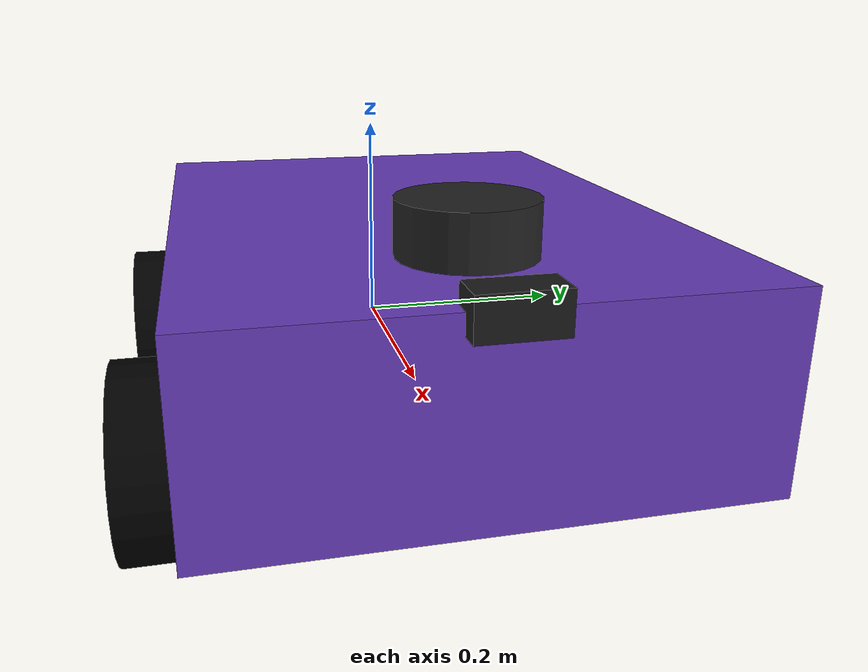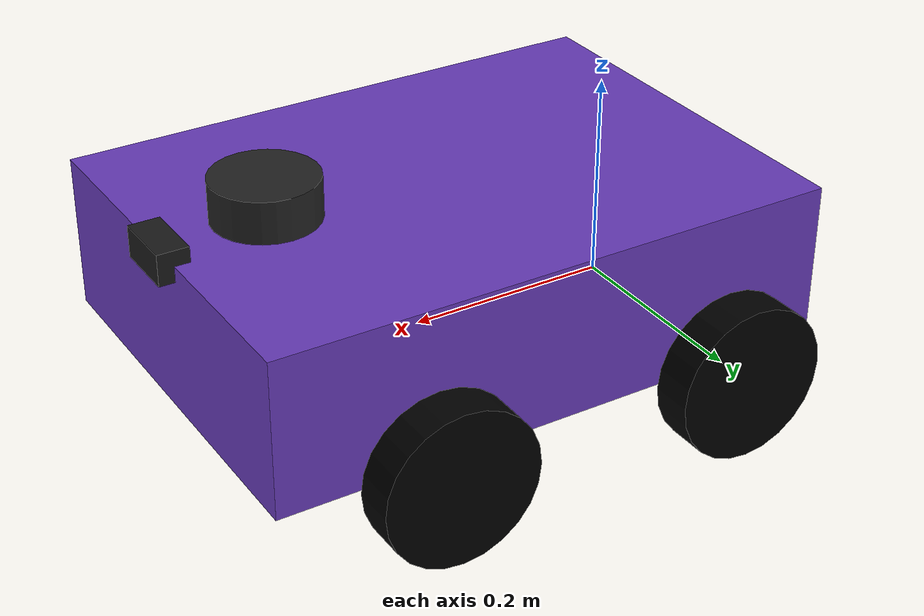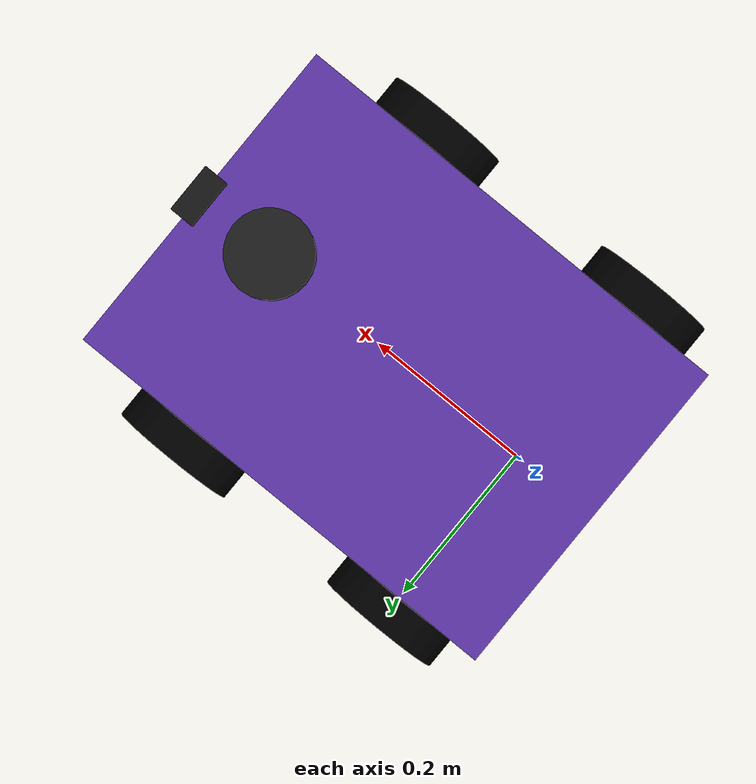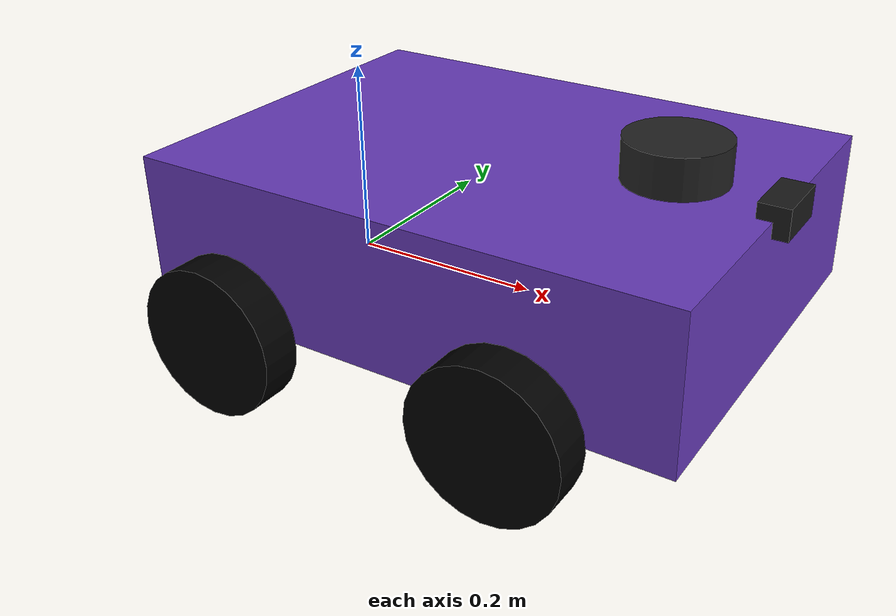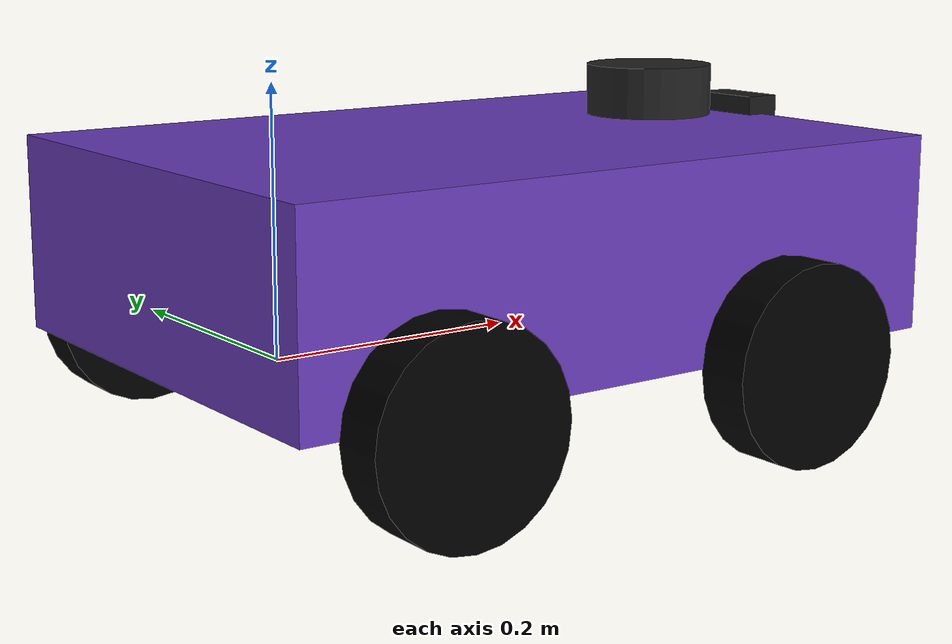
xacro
<?xml version="1.0"?>
<robot name="diff_drive_robot" xmlns:xacro="http://www.ros.org/wiki/xacro">

    <xacro:include filename="robot_core.xacro" />

    <xacro:include filename="gazebo_control.xacro" />

    <xacro:arg name="lidar_type" default="2d"/>
    <xacro:if value="${'$(arg lidar_type)' == '3d'}">
        <xacro:include filename="lidar3d.xacro" />
    </xacro:if>
    <xacro:unless value="${'$(arg lidar_type)' == '3d'}">
        <xacro:include filename="lidar.xacro" />
    </xacro:unless>

    <xacro:include filename="camera.xacro" />

</robot>

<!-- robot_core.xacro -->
<robot name="car_robot" xmlns:xacro="http://www.ros.org/wiki/xacro" xmlns:gazebo="http://gazebo.apache.org/xmlns/gazebo">

  <xacro:include filename="inertial_macros.xacro" />

  <!-- Base Link -->
  <link name="base_link"/>

  <!-- Chassis -->
  <joint name="chassis_joint" type="fixed">
    <parent link="base_link"/>
    <child link="chassis"/>
    <origin xyz="-0.1 0 0"/>
  </joint>

  <link name="chassis">
    <visual>
      <origin xyz="0.275 0 0.075"/>
      <geometry>
        <box size="0.55 0.4 0.15"/>
      </geometry>
      <material name="chassis_material">
        <color rgba="0.40 0.23 0.72 1.0"/>
      </material>
    </visual>
    <collision>
      <origin xyz="0.275 0 0.075"/>
      <geometry>
        <box size="0.55 0.34 0.15"/>
      </geometry>
    </collision>
      <xacro:inertial_box mass="0.5" x="0.55" y="0.4" z="0.15">
            <origin xyz="0.275 0 0.075" rpy="0 0 0"/>
         </xacro:inertial_box>
  </link>

  <!-- Rear Wheels -->
  <joint name="left_wheel_joint" type="continuous">
    <parent link="base_link"/>
    <child link="left_wheel"/>
    <origin xyz="0 0.225 0" rpy="-1.57 0 0"/>
    <axis xyz="0 0 1"/>
  </joint>

  <link name="left_wheel">
    <visual>
      <geometry>
        <cylinder radius="0.075" length="0.04"/>
      </geometry>
      <material name="wheel_material">
        <color rgba="0 0 0 1.0"/>
      </material>
    </visual>
    <collision>
      <geometry>
        <cylinder radius="0.075" length="0.04"/>
      </geometry>
    </collision>
        <xacro:inertial_cylinder mass="0.1" length="0.04" radius="0.075">
            <origin xyz="0 0 0" rpy="0 0 0"/>
         </xacro:inertial_cylinder>
  </link>

  <joint name="right_wheel_joint" type="continuous">
    <parent link="base_link"/>
    <child link="right_wheel"/>
    <origin xyz="0 -0.225 0" rpy="1.57 0 0"/>
    <axis xyz="0 0 -1"/>
  </joint>

  <link name="right_wheel">
    <visual>
      <geometry>
        <cylinder radius="0.075" length="0.04"/>
      </geometry>
      <material name="wheel_material">
        <color rgba="0 0 0 1.0"/>
      </material>
    </visual>
    <collision>
      <geometry>
        <cylinder radius="0.075" length="0.04"/>
      </geometry>
    </collision>
        <xacro:inertial_cylinder mass="0.1" length="0.04" radius="0.075">
            <origin xyz="0 0 0" rpy="0 0 0"/>
         </xacro:inertial_cylinder>
  </link>

  <!-- Front Wheels -->
  <joint name="left_front_wheel_joint" type="fixed">
    <parent link="base_link"/>
    <child link="left_front_wheel"/>
    <origin xyz="0.3 0.225 0" rpy="-1.57 0 0"/>
    <axis xyz="0 0 1"/>
  </joint>

  <link name="left_front_wheel">
    <visual>
      <geometry>
        <cylinder radius="0.075" length="0.04"/>
      </geometry>
      <material name="wheel_material">
        <color rgba="0 0 0 1.0"/>
      </material>
    </visual>
    <collision>
      <geometry>
        <cylinder radius="0.075" length="0.04"/>
      </geometry>
    </collision>
        <xacro:inertial_cylinder mass="0.1" length="0.04" radius="0.075">
            <origin xyz="0 0 0" rpy="0 0 0"/>
         </xacro:inertial_cylinder>
  </link>

  <joint name="right_front_wheel_joint" type="fixed">
    <parent link="base_link"/>
    <child link="right_front_wheel"/>
    <origin xyz="0.3 -0.225 0" rpy="1.57 0 0"/>
    <axis xyz="0 0 -1"/>
  </joint>

  <link name="right_front_wheel">
    <visual>
      <geometry>
        <cylinder radius="0.075" length="0.04"/>
      </geometry>
      <material name="wheel_material">
        <color rgba="0 0 0 1.0"/>
      </material>
    </visual>
    <collision>
      <geometry>
        <cylinder radius="0.075" length="0.04"/>
      </geometry>
    </collision>
        <xacro:inertial_cylinder mass="0.1" length="0.04" radius="0.075">
            <origin xyz="0 0 0" rpy="0 0 0"/>
         </xacro:inertial_cylinder>
  </link>

  <!-- Gazebo Parameters -->
  <gazebo reference="chassis">
    <mu1>1.0</mu1>
    <mu2>1.0</mu2>
  </gazebo>

  <gazebo reference="left_wheel">
    <mu1>1.0</mu1>
    <mu2>1.0</mu2>
  </gazebo>

  <gazebo reference="right_wheel">
    <mu1>1.0</mu1>
    <mu2>1.0</mu2>
  </gazebo>

  <gazebo reference="left_front_wheel">
       <mu1>0.000001</mu1>
         <mu2>0.000001</mu2>
  </gazebo>

  <gazebo reference="right_front_wheel">
     <mu1>0.000001</mu1>
         <mu2>0.000001</mu2>
  </gazebo>

</robot>

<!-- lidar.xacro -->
<robot xmlns:xacro="http://www.ros.org/wiki/xacro" >
   <xacro:arg name="namespace" default=""/>
   <xacro:property name="ns" value="$(arg namespace)"/>
   <joint name="laser_joint" type="fixed">
     <parent link="chassis"/>
     <child link="laser_frame"/>
     <origin xyz="0.45 0 0.175" rpy="0 0 0"/>
   </joint>
   <link name="laser_frame">
      <visual>
         <origin xyz="0 0 0"/>
         <geometry>
            <cylinder length="0.04" radius="0.05"/>
         </geometry>
         <material name="laser_material">
            <color rgba="0.13 0.13 0.13 1.0"/>
         </material>
      </visual>
      <collision>
         <origin xyz="0 0 0"/>
         <geometry>
            <cylinder length="0.04" radius="0.05"/>
         </geometry>
      </collision>
      <xacro:inertial_cylinder mass="0.1" length="0.04" radius="0.05">
         <origin xyz="0 0 0" rpy="0 0 0"/>
      </xacro:inertial_cylinder>
   </link>

   <!-- 2D Lidar New Gazebo Sensor Plugin  -->
   <gazebo reference="laser_frame">
      <sensor name="laser" type="gpu_lidar">
         <pose> 0 0 0 0 0 0 </pose>
         <always_on>true</always_on>
         <visualize>true</visualize>
         <update_rate>10</update_rate>
         <topic>${ns + '/scan' if ns else 'scan'}</topic>
         <gz_frame_id>${ns + '/laser_frame' if ns else 'laser_frame'}</gz_frame_id>
         <lidar>
            <scan>
               <horizontal>
               <samples>360</samples>
               <min_angle>-3.14</min_angle>
               <max_angle>3.14</max_angle>
               </horizontal>
            </scan>
            <range>
               <min>0.3</min>
               <max>12</max>
            </range>
         </lidar>
      </sensor>
   </gazebo>
</robot>

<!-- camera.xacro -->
<robot xmlns:xacro="http://www.ros.org/wiki/xacro">
  <xacro:arg name="namespace" default=""/>
  <xacro:property name="ns" value="$(arg namespace)"/>

  <!-- RGB camera: front-top of chassis, 60° FOV, 640x480 @ 30 Hz -->
  <joint name="camera_joint" type="fixed">
    <parent link="base_link"/>
    <child link="camera_link"/>
    <origin xyz="0.45 0.0 0.15" rpy="0 0 0"/>
  </joint>

  <link name="camera_link">
    <visual>
      <geometry><box size="0.03 0.06 0.03"/></geometry>
      <material name="camera_material">
        <color rgba="0.1 0.1 0.1 1.0"/>
      </material>
    </visual>
    <collision>
      <geometry><box size="0.03 0.06 0.03"/></geometry>
    </collision>
    <xacro:inertial_box mass="0.01" x="0.03" y="0.06" z="0.03">
      <origin xyz="0 0 0" rpy="0 0 0"/>
    </xacro:inertial_box>
  </link>

  <!-- Optical frame: Z forward, X right, Y down (ROS convention) -->
  <joint name="camera_optical_joint" type="fixed">
    <parent link="camera_link"/>
    <child link="camera_optical_frame"/>
    <origin xyz="0 0 0" rpy="-1.5708 0 -1.5708"/>
  </joint>
  <link name="camera_optical_frame"/>

  <gazebo reference="camera_link">
    <sensor name="camera" type="camera">
      <always_on>true</always_on>
      <update_rate>30</update_rate>
      <topic>${ns + '/camera/image_raw' if ns else 'camera/image_raw'}</topic>
      <gz_frame_id>${ns + '/camera_optical_frame' if ns else 'camera_optical_frame'}</gz_frame_id>
      <camera>
        <horizontal_fov>1.047</horizontal_fov>
        <image>
          <width>640</width>
          <height>480</height>
          <format>R8G8B8</format>
        </image>
        <clip>
          <near>0.05</near>
          <far>8.0</far>
        </clip>
        <noise>
          <type>gaussian</type>
          <mean>0.0</mean>
          <stddev>0.007</stddev>
        </noise>
      </camera>
    </sensor>
  </gazebo>

</robot>
